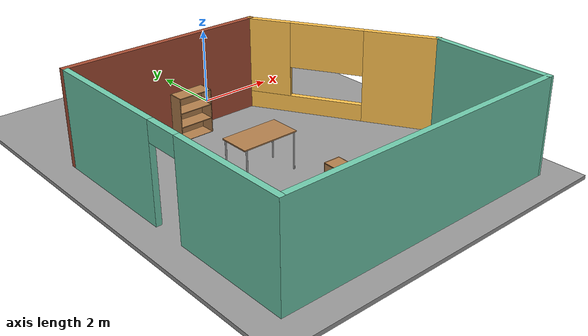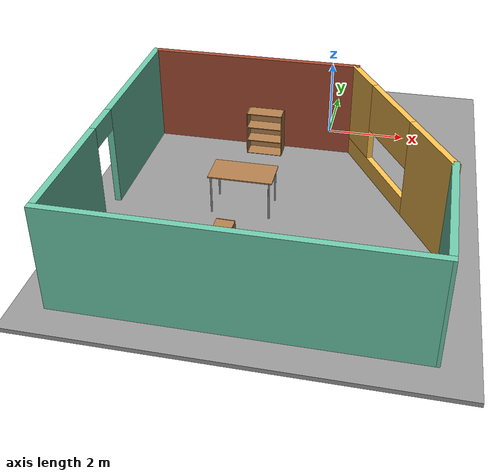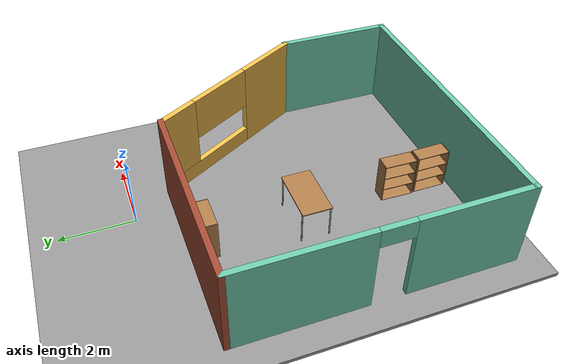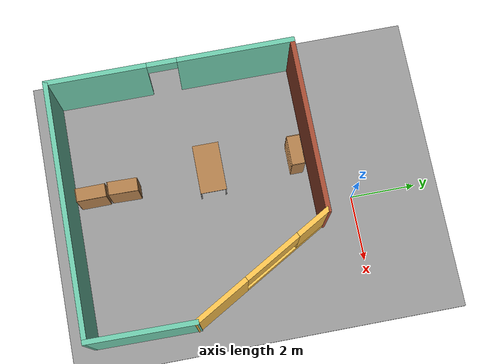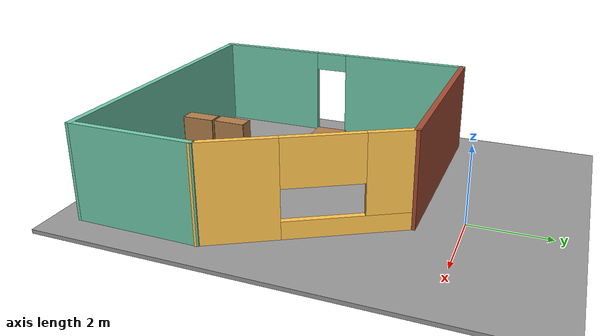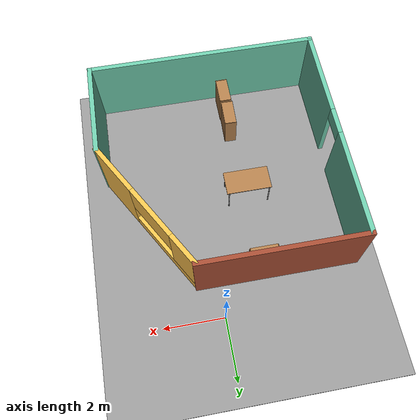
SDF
<sdf version="1.6">
 <world name="default">
  <light name="sun" type="directional">
   <pose>0 0 10 0 -0 0</pose>
   <diffuse>0.8 0.8 0.8 1</diffuse>
   <specular>0.2 0.2 0.2 1</specular>
   <attenuation>
    <range>1000</range>
    <constant>0.9</constant>
    <linear>0.01</linear>
    <quadratic>0.001</quadratic>
   </attenuation>
   <direction>-0.5 0.1 -0.9</direction>
  </light>
  <model name="ground_plane">
   <static>1</static>
   <link name="link">
    <collision name="collision">
     <geometry><plane><normal>0 0 1</normal><size>100 100</size></plane></geometry>
     <surface>
      <contact><collide_bitmask>65535</collide_bitmask></contact>
      <friction><ode><mu>100</mu><mu2>50</mu2></ode></friction>
     </surface>
    </collision>
    <visual name="visual">
     <cast_shadows>0</cast_shadows>
     <geometry><plane><normal>0 0 1</normal><size>100 100</size></plane></geometry>
     <material>
      <script><uri>file://media/materials/scripts/gazebo.material</uri><name>Gazebo/Grey</name></script>
     </material>
    </visual>
   </link>
  </model>
  <gravity>0 0 -9.8</gravity>
  <magnetic_field>6e-06 2.3e-05 -4.2e-05</magnetic_field>
  <atmosphere type="adiabatic"/>
  <physics name="default_physics" default="0" type="ode">
   <max_step_size>0.001</max_step_size>
   <real_time_factor>1</real_time_factor>
   <real_time_update_rate>1000</real_time_update_rate>
  </physics>
  <scene><ambient>0.4 0.4 0.4 1</ambient><background>0.7 0.7 0.7 1</background><shadows>1</shadows></scene>
  <spherical_coordinates>
   <surface_model>EARTH_WGS84</surface_model>
   <latitude_deg>0</latitude_deg>
   <longitude_deg>0</longitude_deg>
   <elevation>0</elevation>
   <heading_deg>0</heading_deg>
  </spherical_coordinates>
  <model name="room">
   <pose>-0.669132 -4.76541 0 0 -0 0</pose>
   <link name="Wall_0">
    <collision name="Wall_0_Collision">
     <geometry><box><size>5.35928 0.15 2.5</size></box></geometry>
     <pose>0 0 1.25 0 -0 0</pose>
    </collision>
    <visual name="Wall_0_Visual">
     <pose>0 0 1.25 0 -0 0</pose>
     <geometry><box><size>5.35928 0.15 2.5</size></box></geometry>
     <material>
      <script><uri>file://media/materials/scripts/gazebo.material</uri><name>Gazebo/Bricks</name></script>
      <ambient>1 1 1 1</ambient>
     </material>
     <meta><layer>0</layer></meta>
    </visual>
    <pose>-1.22623 3.67541 0 0 -0 3.14159</pose>
   </link>
   <link name="Wall_1">
    <pose>-3.83087 0.000411 0 0 0 -1.5708</pose>
    <visual name="Wall_1_Visual_0">
     <pose>-1.98257 0 1.25 0 -0 0</pose>
     <geometry><box><size>3.53485 0.15 2.5</size></box></geometry>
     <material>
      <script><uri>file://media/materials/scripts/gazebo.material</uri><name>Gazebo/Grey</name></script>
      <ambient>0.435294 0.796078 0.67451 1</ambient>
     </material>
     <meta><layer>0</layer></meta>
    </visual>
    <collision name="Wall_1_Collision_0">
     <geometry><box><size>3.53485 0.15 2.5</size></box></geometry>
     <pose>-1.98257 0 1.25 0 -0 0</pose>
    </collision>
    <visual name="Wall_1_Visual_1">
     <pose>2.21742 0 1.25 0 -0 0</pose>
     <geometry><box><size>3.06515 0.15 2.5</size></box></geometry>
     <material>
      <script><uri>file://media/materials/scripts/gazebo.material</uri><name>Gazebo/Grey</name></script>
      <ambient>0.435294 0.796078 0.67451 1</ambient>
     </material>
     <meta><layer>0</layer></meta>
    </visual>
    <collision name="Wall_1_Collision_1">
     <geometry><box><size>3.06515 0.15 2.5</size></box></geometry>
     <pose>2.21742 0 1.25 0 -0 0</pose>
    </collision>
    <visual name="Wall_1_Visual_2">
     <pose>0.23485 0 2.25 0 -0 0</pose>
     <geometry><box><size>0.9 0.15 0.5</size></box></geometry>
     <material>
      <script><uri>file://media/materials/scripts/gazebo.material</uri><name>Gazebo/Grey</name></script>
      <ambient>0.435294 0.796078 0.67451 1</ambient>
     </material>
     <meta><layer>0</layer></meta>
    </visual>
    <collision name="Wall_1_Collision_2">
     <geometry><box><size>0.9 0.15 0.5</size></box></geometry>
     <pose>0.23485 0 2.25 0 -0 0</pose>
    </collision>
   </link>
   <link name="Wall_3">
    <collision name="Wall_3_Collision">
     <geometry><box><size>7.75 0.15 2.5</size></box></geometry>
     <pose>0 0 1.25 0 -0 0</pose>
    </collision>
    <visual name="Wall_3_Visual">
     <pose>0 0 1.25 0 -0 0</pose>
     <geometry><box><size>7.75 0.15 2.5</size></box></geometry>
     <material>
      <script><uri>file://media/materials/scripts/gazebo.material</uri><name>Gazebo/Grey</name></script>
      <ambient>0.435294 0.796078 0.67451 1</ambient>
     </material>
     <meta><layer>0</layer></meta>
    </visual>
    <pose>-0.030868 -3.67459 0 0 -0 0</pose>
   </link>
   <link name="Wall_4">
    <collision name="Wall_4_Collision">
     <geometry><box><size>3.26479 0.15 2.5</size></box></geometry>
     <pose>0 0 1.25 0 -0 0</pose>
    </collision>
    <visual name="Wall_4_Visual">
     <pose>0 0 1.25 0 -0 0</pose>
     <geometry><box><size>3.26479 0.15 2.5</size></box></geometry>
     <material>
      <script><uri>file://media/materials/scripts/gazebo.material</uri><name>Gazebo/Grey</name></script>
      <ambient>0.435294 0.796078 0.67451 1</ambient>
     </material>
     <meta><layer>0</layer></meta>
    </visual>
    <pose>3.78627 -2.11729 0 0 -0 1.55979</pose>
   </link>
   <link name="Wall_5">
    <pose>2.59092 1.54012 0 0 -0 2.0944</pose>
    <visual name="Wall_5_Visual_0">
     <pose>-1.5431 0 1.25 0 -0 0</pose>
     <geometry><box><size>1.9138 0.15 2.5</size></box></geometry>
     <material>
      <script><uri>file://media/materials/scripts/gazebo.material</uri><name>Gazebo/Grey</name></script>
      <ambient>1 0.764706 0.305882 1</ambient>
     </material>
     <meta><layer>0</layer></meta>
    </visual>
    <collision name="Wall_5_Collision_0">
     <geometry><box><size>1.9138 0.15 2.5</size></box></geometry>
     <pose>-1.5431 0 1.25 0 -0 0</pose>
    </collision>
    <visual name="Wall_5_Visual_1">
     <pose>0.956902 0 0.25 0 -0 0</pose>
     <geometry><box><size>3.0862 0.15 0.5</size></box></geometry>
     <material>
      <script><uri>file://media/materials/scripts/gazebo.material</uri><name>Gazebo/Grey</name></script>
      <ambient>1 0.764706 0.305882 1</ambient>
     </material>
     <meta><layer>0</layer></meta>
    </visual>
    <collision name="Wall_5_Collision_1">
     <geometry><box><size>3.0862 0.15 0.5</size></box></geometry>
     <pose>0.956902 0 0.25 0 -0 0</pose>
    </collision>
    <visual name="Wall_5_Visual_2">
     <pose>1.91534 0 1.5 0 -0 0</pose>
     <geometry><box><size>1.16932 0.15 2</size></box></geometry>
     <material>
      <script><uri>file://media/materials/scripts/gazebo.material</uri><name>Gazebo/Grey</name></script>
      <ambient>1 0.764706 0.305882 1</ambient>
     </material>
     <meta><layer>0</layer></meta>
    </visual>
    <collision name="Wall_5_Collision_2">
     <geometry><box><size>1.16932 0.15 2</size></box></geometry>
     <pose>1.91534 0 1.5 0 -0 0</pose>
    </collision>
    <visual name="Wall_5_Visual_3">
     <pose>0.372245 0 1.9 0 -0 0</pose>
     <geometry><box><size>1.91688 0.15 1.2</size></box></geometry>
     <material>
      <script><uri>file://media/materials/scripts/gazebo.material</uri><name>Gazebo/Grey</name></script>
      <ambient>1 0.764706 0.305882 1</ambient>
     </material>
     <meta><layer>0</layer></meta>
    </visual>
    <collision name="Wall_5_Collision_3">
     <geometry><box><size>1.91688 0.15 1.2</size></box></geometry>
     <pose>0.372245 0 1.9 0 -0 0</pose>
    </collision>
   </link>
   <static>1</static>
  </model>
  <model name="bookshelf">
   <static>1</static>
   <link name="link">
    <inertial><mass>1</mass></inertial>
    <collision name="back">
     <pose>0 0.005 0.6 0 -0 0</pose>
     <geometry><box><size>0.9 0.01 1.2</size></box></geometry>
    </collision>
    <visual name="visual1">
     <pose>0 0.005 0.6 0 -0 0</pose>
     <geometry><box><size>0.9 0.01 1.2</size></box></geometry>
     <material>
      <script><uri>file://media/materials/scripts/gazebo.material</uri><name>Gazebo/Wood</name></script>
     </material>
    </visual>
    <collision name="left_side">
     <pose>0.45 -0.195 0.6 0 -0 0</pose>
     <geometry><box><size>0.02 0.4 1.2</size></box></geometry>
    </collision>
    <visual name="visual2">
     <pose>0.45 -0.195 0.6 0 -0 0</pose>
     <geometry><box><size>0.02 0.4 1.2</size></box></geometry>
     <material>
      <script><uri>file://media/materials/scripts/gazebo.material</uri><name>Gazebo/Wood</name></script>
     </material>
    </visual>
    <collision name="right_side">
     <pose>-0.45 -0.195 0.6 0 -0 0</pose>
     <geometry><box><size>0.02 0.4 1.2</size></box></geometry>
    </collision>
    <visual name="visual3">
     <pose>-0.45 -0.195 0.6 0 -0 0</pose>
     <geometry><box><size>0.02 0.4 1.2</size></box></geometry>
     <material>
      <script><uri>file://media/materials/scripts/gazebo.material</uri><name>Gazebo/Wood</name></script>
     </material>
    </visual>
    <collision name="bottom">
     <pose>0 -0.195 0.03 0 -0 0</pose>
     <geometry><box><size>0.88 0.4 0.06</size></box></geometry>
    </collision>
    <visual name="visual4">
     <pose>0 -0.195 0.03 0 -0 0</pose>
     <geometry><box><size>0.88 0.4 0.06</size></box></geometry>
     <material>
      <script><uri>file://media/materials/scripts/gazebo.material</uri><name>Gazebo/Wood</name></script>
     </material>
    </visual>
    <collision name="top">
     <pose>0 -0.195 1.19 0 -0 0</pose>
     <geometry><box><size>0.88 0.4 0.02</size></box></geometry>
    </collision>
    <visual name="visual5">
     <pose>0 -0.195 1.19 0 -0 0</pose>
     <geometry><box><size>0.88 0.4 0.02</size></box></geometry>
     <material>
      <script><uri>file://media/materials/scripts/gazebo.material</uri><name>Gazebo/Wood</name></script>
     </material>
    </visual>
    <collision name="low_shelf">
     <pose>0 -0.195 0.43 0 -0 0</pose>
     <geometry><box><size>0.88 0.4 0.02</size></box></geometry>
    </collision>
    <visual name="visual6">
     <pose>0 -0.195 0.43 0 -0 0</pose>
     <geometry><box><size>0.88 0.4 0.02</size></box></geometry>
     <material>
      <script><uri>file://media/materials/scripts/gazebo.material</uri><name>Gazebo/Wood</name></script>
     </material>
    </visual>
    <collision name="high_shelf">
     <pose>0 -0.195 0.8 0 -0 0</pose>
     <geometry><box><size>0.88 0.4 0.02</size></box></geometry>
    </collision>
    <visual name="visual7">
     <pose>0 -0.195 0.8 0 -0 0</pose>
     <geometry><box><size>0.88 0.4 0.02</size></box></geometry>
     <material>
      <script><uri>file://media/materials/scripts/gazebo.material</uri><name>Gazebo/Wood</name></script>
     </material>
    </visual>
   </link>
   <pose>-1.15752 -7.78484 0 0 0 -1.56611</pose>
  </model>
  <model name="bookshelf_clone">
   <static>1</static>
   <link name="link">
    <inertial><mass>1</mass></inertial>
    <collision name="back">
     <pose>0 0.005 0.6 0 -0 0</pose>
     <geometry><box><size>0.9 0.01 1.2</size></box></geometry>
    </collision>
    <visual name="visual1">
     <pose>0 0.005 0.6 0 -0 0</pose>
     <geometry><box><size>0.9 0.01 1.2</size></box></geometry>
     <material>
      <script><uri>file://media/materials/scripts/gazebo.material</uri><name>Gazebo/Wood</name></script>
     </material>
    </visual>
    <collision name="left_side">
     <pose>0.45 -0.195 0.6 0 -0 0</pose>
     <geometry><box><size>0.02 0.4 1.2</size></box></geometry>
    </collision>
    <visual name="visual2">
     <pose>0.45 -0.195 0.6 0 -0 0</pose>
     <geometry><box><size>0.02 0.4 1.2</size></box></geometry>
     <material>
      <script><uri>file://media/materials/scripts/gazebo.material</uri><name>Gazebo/Wood</name></script>
     </material>
    </visual>
    <collision name="right_side">
     <pose>-0.45 -0.195 0.6 0 -0 0</pose>
     <geometry><box><size>0.02 0.4 1.2</size></box></geometry>
    </collision>
    <visual name="visual3">
     <pose>-0.45 -0.195 0.6 0 -0 0</pose>
     <geometry><box><size>0.02 0.4 1.2</size></box></geometry>
     <material>
      <script><uri>file://media/materials/scripts/gazebo.material</uri><name>Gazebo/Wood</name></script>
     </material>
    </visual>
    <collision name="bottom">
     <pose>0 -0.195 0.03 0 -0 0</pose>
     <geometry><box><size>0.88 0.4 0.06</size></box></geometry>
    </collision>
    <visual name="visual4">
     <pose>0 -0.195 0.03 0 -0 0</pose>
     <geometry><box><size>0.88 0.4 0.06</size></box></geometry>
     <material>
      <script><uri>file://media/materials/scripts/gazebo.material</uri><name>Gazebo/Wood</name></script>
     </material>
    </visual>
    <collision name="top">
     <pose>0 -0.195 1.19 0 -0 0</pose>
     <geometry><box><size>0.88 0.4 0.02</size></box></geometry>
    </collision>
    <visual name="visual5">
     <pose>0 -0.195 1.19 0 -0 0</pose>
     <geometry><box><size>0.88 0.4 0.02</size></box></geometry>
     <material>
      <script><uri>file://media/materials/scripts/gazebo.material</uri><name>Gazebo/Wood</name></script>
     </material>
    </visual>
    <collision name="low_shelf">
     <pose>0 -0.195 0.43 0 -0 0</pose>
     <geometry><box><size>0.88 0.4 0.02</size></box></geometry>
    </collision>
    <visual name="visual6">
     <pose>0 -0.195 0.43 0 -0 0</pose>
     <geometry><box><size>0.88 0.4 0.02</size></box></geometry>
     <material>
      <script><uri>file://media/materials/scripts/gazebo.material</uri><name>Gazebo/Wood</name></script>
     </material>
    </visual>
    <collision name="high_shelf">
     <pose>0 -0.195 0.8 0 -0 0</pose>
     <geometry><box><size>0.88 0.4 0.02</size></box></geometry>
    </collision>
    <visual name="visual7">
     <pose>0 -0.195 0.8 0 -0 0</pose>
     <geometry><box><size>0.88 0.4 0.02</size></box></geometry>
     <material>
      <script><uri>file://media/materials/scripts/gazebo.material</uri><name>Gazebo/Wood</name></script>
     </material>
    </visual>
   </link>
   <pose>-1.17149 -6.82231 0 0 0 -1.59499</pose>
  </model>
  <model name="bookshelf_clone_0">
   <static>1</static>
   <link name="link">
    <inertial><mass>1</mass></inertial>
    <collision name="back">
     <pose>0 0.005 0.6 0 -0 0</pose>
     <geometry><box><size>0.9 0.01 1.2</size></box></geometry>
    </collision>
    <visual name="visual1">
     <pose>0 0.005 0.6 0 -0 0</pose>
     <geometry><box><size>0.9 0.01 1.2</size></box></geometry>
     <material>
      <script><uri>file://media/materials/scripts/gazebo.material</uri><name>Gazebo/Wood</name></script>
     </material>
    </visual>
    <collision name="left_side">
     <pose>0.45 -0.195 0.6 0 -0 0</pose>
     <geometry><box><size>0.02 0.4 1.2</size></box></geometry>
    </collision>
    <visual name="visual2">
     <pose>0.45 -0.195 0.6 0 -0 0</pose>
     <geometry><box><size>0.02 0.4 1.2</size></box></geometry>
     <material>
      <script><uri>file://media/materials/scripts/gazebo.material</uri><name>Gazebo/Wood</name></script>
     </material>
    </visual>
    <collision name="right_side">
     <pose>-0.45 -0.195 0.6 0 -0 0</pose>
     <geometry><box><size>0.02 0.4 1.2</size></box></geometry>
    </collision>
    <visual name="visual3">
     <pose>-0.45 -0.195 0.6 0 -0 0</pose>
     <geometry><box><size>0.02 0.4 1.2</size></box></geometry>
     <material>
      <script><uri>file://media/materials/scripts/gazebo.material</uri><name>Gazebo/Wood</name></script>
     </material>
    </visual>
    <collision name="bottom">
     <pose>0 -0.195 0.03 0 -0 0</pose>
     <geometry><box><size>0.88 0.4 0.06</size></box></geometry>
    </collision>
    <visual name="visual4">
     <pose>0 -0.195 0.03 0 -0 0</pose>
     <geometry><box><size>0.88 0.4 0.06</size></box></geometry>
     <material>
      <script><uri>file://media/materials/scripts/gazebo.material</uri><name>Gazebo/Wood</name></script>
     </material>
    </visual>
    <collision name="top">
     <pose>0 -0.195 1.19 0 -0 0</pose>
     <geometry><box><size>0.88 0.4 0.02</size></box></geometry>
    </collision>
    <visual name="visual5">
     <pose>0 -0.195 1.19 0 -0 0</pose>
     <geometry><box><size>0.88 0.4 0.02</size></box></geometry>
     <material>
      <script><uri>file://media/materials/scripts/gazebo.material</uri><name>Gazebo/Wood</name></script>
     </material>
    </visual>
    <collision name="low_shelf">
     <pose>0 -0.195 0.43 0 -0 0</pose>
     <geometry><box><size>0.88 0.4 0.02</size></box></geometry>
    </collision>
    <visual name="visual6">
     <pose>0 -0.195 0.43 0 -0 0</pose>
     <geometry><box><size>0.88 0.4 0.02</size></box></geometry>
     <material>
      <script><uri>file://media/materials/scripts/gazebo.material</uri><name>Gazebo/Wood</name></script>
     </material>
    </visual>
    <collision name="high_shelf">
     <pose>0 -0.195 0.8 0 -0 0</pose>
     <geometry><box><size>0.88 0.4 0.02</size></box></geometry>
    </collision>
    <visual name="visual7">
     <pose>0 -0.195 0.8 0 -0 0</pose>
     <geometry><box><size>0.88 0.4 0.02</size></box></geometry>
     <material>
      <script><uri>file://media/materials/scripts/gazebo.material</uri><name>Gazebo/Wood</name></script>
     </material>
    </visual>
   </link>
   <pose>-1.51158 -1.31788 0 0 -0 0.000505</pose>
  </model>
  <model name="table">
   <static>1</static>
   <link name="link">
    <collision name="surface">
     <pose>0 0 1 0 -0 0</pose>
     <geometry><box><size>1.5 0.8 0.03</size></box></geometry>
     <surface><friction><ode><mu>0.6</mu><mu2>0.6</mu2></ode></friction></surface>
    </collision>
    <visual name="visual1">
     <pose>0 0 1 0 -0 0</pose>
     <geometry><box><size>1.5 0.8 0.03</size></box></geometry>
     <material>
      <script><uri>file://media/materials/scripts/gazebo.material</uri><name>Gazebo/Wood</name></script>
     </material>
    </visual>
    <collision name="front_left_leg">
     <pose>0.68 0.38 0.5 0 -0 0</pose>
     <geometry><cylinder><radius>0.02</radius><length>1</length></cylinder></geometry>
    </collision>
    <visual name="front_left_leg">
     <pose>0.68 0.38 0.5 0 -0 0</pose>
     <geometry><cylinder><radius>0.02</radius><length>1</length></cylinder></geometry>
     <material>
      <script><uri>file://media/materials/scripts/gazebo.material</uri><name>Gazebo/Grey</name></script>
     </material>
    </visual>
    <collision name="front_right_leg">
     <pose>0.68 -0.38 0.5 0 -0 0</pose>
     <geometry><cylinder><radius>0.02</radius><length>1</length></cylinder></geometry>
    </collision>
    <visual name="front_right_leg">
     <pose>0.68 -0.38 0.5 0 -0 0</pose>
     <geometry><cylinder><radius>0.02</radius><length>1</length></cylinder></geometry>
     <material>
      <script><uri>file://media/materials/scripts/gazebo.material</uri><name>Gazebo/Grey</name></script>
     </material>
    </visual>
    <collision name="back_right_leg">
     <pose>-0.68 -0.38 0.5 0 -0 0</pose>
     <geometry><cylinder><radius>0.02</radius><length>1</length></cylinder></geometry>
    </collision>
    <visual name="back_right_leg">
     <pose>-0.68 -0.38 0.5 0 -0 0</pose>
     <geometry><cylinder><radius>0.02</radius><length>1</length></cylinder></geometry>
     <material>
      <script><uri>file://media/materials/scripts/gazebo.material</uri><name>Gazebo/Grey</name></script>
     </material>
    </visual>
    <collision name="back_left_leg">
     <pose>-0.68 0.38 0.5 0 -0 0</pose>
     <geometry><cylinder><radius>0.02</radius><length>1</length></cylinder></geometry>
    </collision>
    <visual name="back_left_leg">
     <pose>-0.68 0.38 0.5 0 -0 0</pose>
     <geometry><cylinder><radius>0.02</radius><length>1</length></cylinder></geometry>
     <material>
      <script><uri>file://media/materials/scripts/gazebo.material</uri><name>Gazebo/Grey</name></script>
     </material>
    </visual>
   </link>
   <pose>-1.49421 -4.16578 0 0 -0 0</pose>
  </model>
  <model name="ground_plane_0">
   <static>1</static>
   <link name="link">
    <collision name="collision">
     <geometry><plane><normal>0 0 1</normal><size>100 100</size></plane></geometry>
     <surface><friction><ode><mu>100</mu><mu2>50</mu2></ode></friction></surface>
    </collision>
    <visual name="visual">
     <cast_shadows>0</cast_shadows>
     <geometry><plane><normal>0 0 1</normal><size>100 100</size></plane></geometry>
     <material>
      <script><uri>file://media/materials/scripts/gazebo.material</uri><name>Gazebo/Grey</name></script>
     </material>
    </visual>
   </link>
   <pose>-3.60079 -3.45701 0 0 -0 0</pose>
  </model>
 </world>
</sdf>
